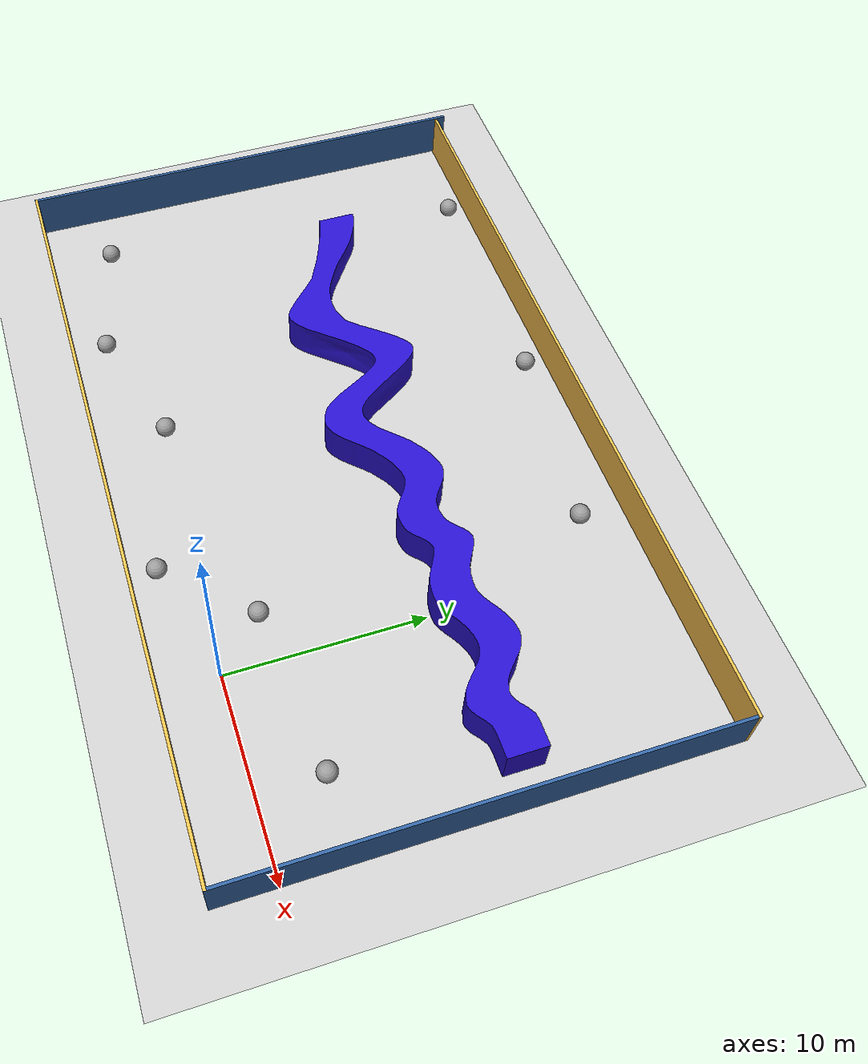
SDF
<sdf version="1.6">
 <world name="default">
  <model name="ground_plane">
   <static>1</static>
   <link name="link">
    <collision name="collision">
     <geometry><plane><normal>0 0 1</normal><size>100 100</size></plane></geometry>
     <surface>
      <contact><collide_bitmask>65535</collide_bitmask></contact>
      <friction><ode><mu>100</mu><mu2>50</mu2></ode></friction>
     </surface>
    </collision>
    <visual name="visual">
     <cast_shadows>0</cast_shadows>
     <geometry><plane><normal>0 0 1</normal><size>100 100</size></plane></geometry>
     <material>
      <script><uri>file://media/materials/scripts/gazebo.material</uri><name>Gazebo/Grey</name></script>
     </material>
    </visual>
   </link>
  </model>
  <model name="blender_wall">
   <static>true</static>
   <link name="body">
    <collision name="collision">
     <geometry><mesh><uri>model://walls/blender_one_wall.stl</uri></mesh></geometry>
    </collision>
    <visual name="visual">
     <geometry><mesh><uri>model://walls/blender_one_wall.dae</uri><scale>1.0 1.0 1.0</scale></mesh></geometry>
    </visual>
    <inertial>
     <mass>1</mass>
     <inertia><ixx>0.145833</ixx><ixy>0</ixy><ixz>0</ixz><iyy>0.145833</iyy><iyz>0</iyz><izz>0.125</izz></inertia>
    </inertial>
   </link>
  </model>
  <light name="sun" type="directional">
   <pose>0 0 10 0 -0 0</pose>
   <diffuse>0.8 0.8 0.8 1</diffuse>
   <specular>0.2 0.2 0.2 1</specular>
   <attenuation>
    <range>1000</range>
    <constant>0.9</constant>
    <linear>0.01</linear>
    <quadratic>0.001</quadratic>
   </attenuation>
   <direction>-0.5 0.1 -0.9</direction>
  </light>
  <model name="one_wall.sdf">
   <pose>-10.5083 9.46651 0 0 -0 0</pose>
   <link name="Wall_13">
    <collision name="Wall_13_Collision">
     <geometry><box><size>25 0.15 2.5</size></box></geometry>
     <pose>0 0 1.25 0 -0 0</pose>
    </collision>
    <visual name="Wall_13_Visual">
     <pose>0 0 1.25 0 -0 0</pose>
     <geometry><box><size>25 0.15 2.5</size></box></geometry>
     <material>
      <script><uri>file://media/materials/scripts/gazebo.material</uri><name>Gazebo/Grey</name></script>
      <ambient>0.203922 0.396078 0.643137 1</ambient>
     </material>
     <meta><layer>0</layer></meta>
    </visual>
    <pose>-20.425 -0 0 0 -0 -1.5708</pose>
   </link>
   <link name="Wall_14">
    <collision name="Wall_14_Collision">
     <geometry><box><size>41 0.15 2.5</size></box></geometry>
     <pose>0 0 1.25 0 -0 0</pose>
    </collision>
    <visual name="Wall_14_Visual">
     <pose>0 0 1.25 0 -0 0</pose>
     <geometry><box><size>41 0.15 2.5</size></box></geometry>
     <material>
      <script><uri>file://media/materials/scripts/gazebo.material</uri><name>Gazebo/Grey</name></script>
      <ambient>1 0.764706 0.305882 1</ambient>
     </material>
     <meta><layer>0</layer></meta>
    </visual>
    <pose>-0 -12.425 0 0 -0 0</pose>
   </link>
   <link name="Wall_15">
    <collision name="Wall_15_Collision">
     <geometry><box><size>24.5 0.15 2.5</size></box></geometry>
     <pose>0 0 1.25 0 -0 0</pose>
    </collision>
    <visual name="Wall_15_Visual">
     <pose>0 0 1.25 0 -0 0</pose>
     <geometry><box><size>24.5 0.15 2.5</size></box></geometry>
     <material>
      <script><uri>file://media/materials/scripts/gazebo.material</uri><name>Gazebo/Grey</name></script>
      <ambient>0.203922 0.396078 0.643137 1</ambient>
     </material>
     <meta><layer>0</layer></meta>
    </visual>
    <pose>20.425 -0.25 0 0 -0 1.5708</pose>
   </link>
   <link name="Wall_16">
    <collision name="Wall_16_Collision">
     <geometry><box><size>40.75 0.15 2.5</size></box></geometry>
     <pose>0 0 1.25 0 -0 0</pose>
    </collision>
    <visual name="Wall_16_Visual">
     <pose>0 0 1.25 0 -0 0</pose>
     <geometry><box><size>40.75 0.15 2.5</size></box></geometry>
     <material>
      <script><uri>file://media/materials/scripts/gazebo.material</uri><name>Gazebo/Grey</name></script>
      <ambient>1 0.764706 0.305882 1</ambient>
     </material>
     <meta><layer>0</layer></meta>
    </visual>
    <pose>0.125 11.925 0 0 -0 3.14159</pose>
   </link>
   <static>1</static>
  </model>
  <gravity>0 0 -9.8</gravity>
  <magnetic_field>6e-06 2.3e-05 -4.2e-05</magnetic_field>
  <atmosphere type="adiabatic"/>
  <physics name="default_physics" default="0" type="ode">
   <max_step_size>0.001</max_step_size>
   <real_time_factor>1</real_time_factor>
   <real_time_update_rate>1000</real_time_update_rate>
  </physics>
  <scene><ambient>0.4 0.4 0.4 1</ambient><background>0.7 0.7 0.7 1</background><shadows>1</shadows></scene>
  <audio><device>default</device></audio>
  <spherical_coordinates>
   <surface_model>EARTH_WGS84</surface_model>
   <latitude_deg>0</latitude_deg>
   <longitude_deg>0</longitude_deg>
   <elevation>0</elevation>
   <heading_deg>0</heading_deg>
  </spherical_coordinates>
  <model name="unit_sphere">
   <pose>-27.4814 0.423144 0.5 0 -0 0</pose>
   <link name="link">
    <inertial>
     <mass>1</mass>
     <inertia><ixx>0.1</ixx><ixy>0</ixy><ixz>0</ixz><iyy>0.1</iyy><iyz>0</iyz><izz>0.1</izz></inertia>
    </inertial>
    <collision name="collision"><geometry><sphere><radius>0.5</radius></sphere></geometry></collision>
    <visual name="visual">
     <geometry><sphere><radius>0.5</radius></sphere></geometry>
     <material>
      <script><name>Gazebo/Grey</name><uri>file://media/materials/scripts/gazebo.material</uri></script>
     </material>
    </visual>
   </link>
  </model>
  <model name="unit_sphere_0">
   <pose>-20.7958 -1.14454 0.5 0 -0 0</pose>
   <link name="link">
    <inertial>
     <mass>1</mass>
     <inertia><ixx>0.1</ixx><ixy>0</ixy><ixz>0</ixz><iyy>0.1</iyy><iyz>0</iyz><izz>0.1</izz></inertia>
    </inertial>
    <collision name="collision"><geometry><sphere><radius>0.5</radius></sphere></geometry></collision>
    <visual name="visual">
     <geometry><sphere><radius>0.5</radius></sphere></geometry>
     <material>
      <script><name>Gazebo/Grey</name><uri>file://media/materials/scripts/gazebo.material</uri></script>
     </material>
    </visual>
   </link>
  </model>
  <model name="unit_sphere_1">
   <pose>-14.2921 0.683219 0.5 0 -0 0</pose>
   <link name="link">
    <inertial>
     <mass>1</mass>
     <inertia><ixx>0.1</ixx><ixy>0</ixy><ixz>0</ixz><iyy>0.1</iyy><iyz>0</iyz><izz>0.1</izz></inertia>
    </inertial>
    <collision name="collision"><geometry><sphere><radius>0.5</radius></sphere></geometry></collision>
    <visual name="visual">
     <geometry><sphere><radius>0.5</radius></sphere></geometry>
     <material>
      <script><name>Gazebo/Grey</name><uri>file://media/materials/scripts/gazebo.material</uri></script>
     </material>
    </visual>
   </link>
  </model>
  <model name="unit_sphere_2">
   <pose>-6.118 -1.59161 0.5 0 -0 0</pose>
   <link name="link">
    <inertial>
     <mass>1</mass>
     <inertia><ixx>0.1</ixx><ixy>0</ixy><ixz>0</ixz><iyy>0.1</iyy><iyz>0</iyz><izz>0.1</izz></inertia>
    </inertial>
    <collision name="collision"><geometry><sphere><radius>0.5</radius></sphere></geometry></collision>
    <visual name="visual">
     <geometry><sphere><radius>0.5</radius></sphere></geometry>
     <material>
      <script><name>Gazebo/Grey</name><uri>file://media/materials/scripts/gazebo.material</uri></script>
     </material>
    </visual>
   </link>
  </model>
  <model name="unit_sphere_3">
   <pose>5.99589 3.25603 0.5 0 -0 0</pose>
   <link name="link">
    <inertial>
     <mass>1</mass>
     <inertia><ixx>0.1</ixx><ixy>0</ixy><ixz>0</ixz><iyy>0.1</iyy><iyz>0</iyz><izz>0.1</izz></inertia>
    </inertial>
    <collision name="collision"><geometry><sphere><radius>0.5</radius></sphere></geometry></collision>
    <visual name="visual">
     <geometry><sphere><radius>0.5</radius></sphere></geometry>
     <material>
      <script><name>Gazebo/Grey</name><uri>file://media/materials/scripts/gazebo.material</uri></script>
     </material>
    </visual>
   </link>
  </model>
  <model name="unit_sphere_4">
   <pose>-25.2659 20.3094 0.5 0 -0 0</pose>
   <link name="link">
    <inertial>
     <mass>1</mass>
     <inertia><ixx>0.1</ixx><ixy>0</ixy><ixz>0</ixz><iyy>0.1</iyy><iyz>0</iyz><izz>0.1</izz></inertia>
    </inertial>
    <collision name="collision"><geometry><sphere><radius>0.5</radius></sphere></geometry></collision>
    <visual name="visual">
     <geometry><sphere><radius>0.5</radius></sphere></geometry>
     <material>
      <script><name>Gazebo/Grey</name><uri>file://media/materials/scripts/gazebo.material</uri></script>
     </material>
    </visual>
   </link>
  </model>
  <model name="unit_sphere_5">
   <pose>-12.8495 20.1587 0.5 0 -0 0</pose>
   <link name="link">
    <inertial>
     <mass>1</mass>
     <inertia><ixx>0.1</ixx><ixy>0</ixy><ixz>0</ixz><iyy>0.1</iyy><iyz>0</iyz><izz>0.1</izz></inertia>
    </inertial>
    <collision name="collision"><geometry><sphere><radius>0.5</radius></sphere></geometry></collision>
    <visual name="visual">
     <geometry><sphere><radius>0.5</radius></sphere></geometry>
     <material>
      <script><name>Gazebo/Grey</name><uri>file://media/materials/scripts/gazebo.material</uri></script>
     </material>
    </visual>
   </link>
  </model>
  <model name="unit_sphere_6">
   <pose>-2.93678 19.0073 0.5 0 -0 0</pose>
   <link name="link">
    <inertial>
     <mass>1</mass>
     <inertia><ixx>0.1</ixx><ixy>0</ixy><ixz>0</ixz><iyy>0.1</iyy><iyz>0</iyz><izz>0.1</izz></inertia>
    </inertial>
    <collision name="collision"><geometry><sphere><radius>0.5</radius></sphere></geometry></collision>
    <visual name="visual">
     <geometry><sphere><radius>0.5</radius></sphere></geometry>
     <material>
      <script><name>Gazebo/Grey</name><uri>file://media/materials/scripts/gazebo.material</uri></script>
     </material>
    </visual>
   </link>
  </model>
  <model name="unit_sphere_7">
   <pose>-2.41027 2.45 0.5 0 -0 0</pose>
   <link name="link">
    <inertial>
     <mass>1</mass>
     <inertia><ixx>0.1</ixx><ixy>0</ixy><ixz>0</ixz><iyy>0.1</iyy><iyz>0</iyz><izz>0.1</izz></inertia>
    </inertial>
    <collision name="collision"><geometry><sphere><radius>0.5</radius></sphere></geometry></collision>
    <visual name="visual">
     <geometry><sphere><radius>0.5</radius></sphere></geometry>
     <material>
      <script><name>Gazebo/Grey</name><uri>file://media/materials/scripts/gazebo.material</uri></script>
     </material>
    </visual>
   </link>
  </model>
 </world>
</sdf>
